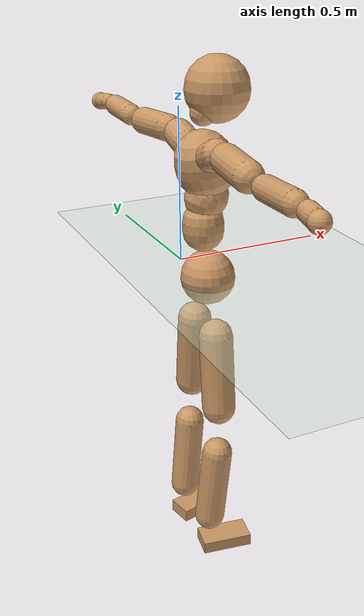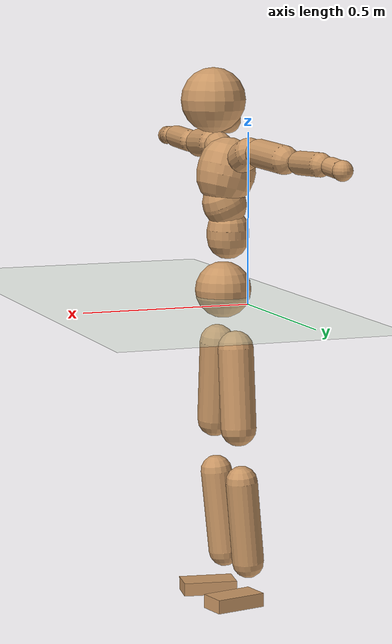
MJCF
<mujoco model="humanoid">
  <compiler coordinate="local" angle="radian"/>
  <default>
    <joint damping="0.0" armature="0.01" stiffness="0.0" limited="true"/>
    <geom conaffinity="1" condim="3" contype="7" margin="0.001" rgba="0.8 0.6 .4 1"/>
  </default>
  <asset>
    <texture type="skybox" builtin="gradient" rgb1=".4 .5 .6" rgb2="0 0 0" width="100" height="100"/>
    <texture builtin="flat" height="1278" mark="cross" markrgb="1 1 1" name="texgeom" random="0.01" rgb1="0.8 0.6 0.4" rgb2="0.8 0.6 0.4" type="cube" width="127"/>
    <texture builtin="checker" height="100" name="texplane" rgb1="0 0 0" rgb2="0.8 0.8 0.8" type="2d" width="100"/>
    <material name="MatPlane" reflectance="0.5" shininess="1" specular="1" texrepeat="60 60" texture="texplane"/>
    <material name="geom" texture="texgeom" texuniform="true"/>
  </asset>
  <worldbody>
    <light cutoff="100" diffuse="1 1 1" dir="-0 0 -1.3" directional="true" exponent="1" pos="0 0 1.3" specular=".1 .1 .1"/>
    <geom conaffinity="1" condim="3" name="floor" pos="0 0 0" rgba="0.8 0.9 0.8 1" size="100 100 .2" type="plane" material="MatPlane"/>
    <body name="Pelvis" pos="-0.0015 -0.2032 0.017">
      <freejoint name="Pelvis"/>
      <geom type="sphere" contype="1" conaffinity="1" density="500" size="0.0844" pos="0.0000 0.0000 0.0000" name="Pelvis"/>
      <body name="L_Hip" pos="-0.0121 0.0647 -0.0895">
        <joint name="L_Hip_x" type="hinge" pos="0 0 0" axis="1 0 0" stiffness="800" damping="80" armature="0.02" range="-180.0000 180.0000"/>
        <joint name="L_Hip_y" type="hinge" pos="0 0 0" axis="0 1 0" stiffness="800" damping="80" armature="0.02" range="-180.0000 180.0000"/>
        <joint name="L_Hip_z" type="hinge" pos="0 0 0" axis="0 0 1" stiffness="800" damping="80" armature="0.02" range="-180.0000 180.0000"/>
        <geom type="capsule" contype="1" conaffinity="1" density="500" fromto="-0.0002 0.0077 -0.0794 -0.0010 0.0310 -0.3175" size="0.0538" name="L_Hip"/>
        <body name="L_Knee" pos="-0.0012 0.0387 -0.3969">
          <joint name="L_Knee_x" type="hinge" pos="0 0 0" axis="1 0 0" stiffness="800" damping="80" armature="0.02" range="-180.0000 180.0000"/>
          <joint name="L_Knee_y" type="hinge" pos="0 0 0" axis="0 1 0" stiffness="800" damping="80" armature="0.02" range="-180.0000 180.0000"/>
          <joint name="L_Knee_z" type="hinge" pos="0 0 0" axis="0 0 1" stiffness="800" damping="80" armature="0.02" range="-180.0000 180.0000"/>
          <geom type="capsule" contype="1" conaffinity="1" density="500" fromto="-0.0082 -0.0024 -0.0836 -0.0327 -0.0096 -0.3342" size="0.0481" name="L_Knee"/>
          <body name="L_Ankle" pos="-0.0408 -0.012 -0.4178">
            <joint name="L_Ankle_x" type="hinge" pos="0 0 0" axis="1 0 0" stiffness="800" damping="80" armature="0.02" range="-180.0000 180.0000"/>
            <joint name="L_Ankle_y" type="hinge" pos="0 0 0" axis="0 1 0" stiffness="800" damping="80" armature="0.02" range="-180.0000 180.0000"/>
            <joint name="L_Ankle_z" type="hinge" pos="0 0 0" axis="0 0 1" stiffness="800" damping="80" armature="0.02" range="-180.0000 180.0000"/>
            <geom type="box" contype="1" conaffinity="1" density="500" pos="0.0574 0.0116 -0.0291" size="0.079 0.0422 0.021" quat="0.9950 0.0000 0.0000 0.0998" name="L_Ankle"/>
            <body name="L_Toe" pos="0.1149 0.0233 -0.0582">
              <joint name="L_Toe_x" type="hinge" pos="0 0 0" axis="1 0 0" stiffness="500" damping="50" armature="0.02" range="-180.0000 180.0000"/>
              <joint name="L_Toe_y" type="hinge" pos="0 0 0" axis="0 1 0" stiffness="500" damping="50" armature="0.02" range="-180.0000 180.0000"/>
              <joint name="L_Toe_z" type="hinge" pos="0 0 0" axis="0 0 1" stiffness="500" damping="50" armature="0.02" range="-180.0000 180.0000"/>
              <geom type="box" contype="1" conaffinity="1" density="500" pos="0.0000 0.0000 0.0291" size="0.0009 0.0021 0.001" quat="0.9943 0.0000 0.0000 0.1063" name="L_Toe"/>
            </body>
          </body>
        </body>
      </body>
      <body name="R_Hip" pos="-0.0075 -0.0626 -0.0886">
        <joint name="R_Hip_x" type="hinge" pos="0 0 0" axis="1 0 0" stiffness="800" damping="80" armature="0.02" range="-180.0000 180.0000"/>
        <joint name="R_Hip_y" type="hinge" pos="0 0 0" axis="0 1 0" stiffness="800" damping="80" armature="0.02" range="-180.0000 180.0000"/>
        <joint name="R_Hip_z" type="hinge" pos="0 0 0" axis="0 0 1" stiffness="800" damping="80" armature="0.02" range="-180.0000 180.0000"/>
        <geom type="capsule" contype="1" conaffinity="1" density="500" fromto="-0.0007 -0.0089 -0.0811 -0.0029 -0.0358 -0.3245" size="0.053" name="R_Hip"/>
        <body name="R_Knee" pos="-0.0036 -0.0447 -0.4056">
          <joint name="R_Knee_x" type="hinge" pos="0 0 0" axis="1 0 0" stiffness="800" damping="80" armature="0.02" range="-180.0000 180.0000"/>
          <joint name="R_Knee_y" type="hinge" pos="0 0 0" axis="0 1 0" stiffness="800" damping="80" armature="0.02" range="-180.0000 180.0000"/>
          <joint name="R_Knee_z" type="hinge" pos="0 0 0" axis="0 0 1" stiffness="800" damping="80" armature="0.02" range="-180.0000 180.0000"/>
          <geom type="capsule" contype="1" conaffinity="1" density="500" fromto="-0.0076 0.0032 -0.0838 -0.0303 0.0129 -0.3350" size="0.0486" name="R_Knee"/>
          <body name="R_Ankle" pos="-0.0379 0.0162 -0.4188">
            <joint name="R_Ankle_x" type="hinge" pos="0 0 0" axis="1 0 0" stiffness="800" damping="80" armature="0.02" range="-180.0000 180.0000"/>
            <joint name="R_Ankle_y" type="hinge" pos="0 0 0" axis="0 1 0" stiffness="800" damping="80" armature="0.02" range="-180.0000 180.0000"/>
            <joint name="R_Ankle_z" type="hinge" pos="0 0 0" axis="0 0 1" stiffness="800" damping="80" armature="0.02" range="-180.0000 180.0000"/>
            <geom type="box" contype="1" conaffinity="1" density="500" pos="0.0590 -0.0096 -0.0247" size="0.082 0.0445 0.0199" quat="0.9967 0.0000 0.0000 -0.0807" name="R_Ankle"/>
            <body name="R_Toe" pos="0.118 -0.0192 -0.0494">
              <joint name="R_Toe_x" type="hinge" pos="0 0 0" axis="1 0 0" stiffness="500" damping="50" armature="0.02" range="-180.0000 180.0000"/>
              <joint name="R_Toe_y" type="hinge" pos="0 0 0" axis="0 1 0" stiffness="500" damping="50" armature="0.02" range="-180.0000 180.0000"/>
              <joint name="R_Toe_z" type="hinge" pos="0 0 0" axis="0 0 1" stiffness="500" damping="50" armature="0.02" range="-180.0000 180.0000"/>
              <geom type="box" contype="1" conaffinity="1" density="500" pos="0.0000 0.0000 0.0270" size="0.0008 0.0022 0.0011" quat="0.9975 0.0000 0.0000 -0.0712" name="R_Toe"/>
            </body>
          </body>
        </body>
      </body>
      <body name="Torso" pos="-0.0158 -0.0025 0.1019">
        <joint name="Torso_x" type="hinge" pos="0 0 0" axis="1 0 0" stiffness="1000" damping="100" armature="0.02" range="-180.0000 180.0000"/>
        <joint name="Torso_y" type="hinge" pos="0 0 0" axis="0 1 0" stiffness="1000" damping="100" armature="0.02" range="-180.0000 180.0000"/>
        <joint name="Torso_z" type="hinge" pos="0 0 0" axis="0 0 1" stiffness="1000" damping="100" armature="0.02" range="-180.0000 180.0000"/>
        <geom type="capsule" contype="1" conaffinity="1" density="500" fromto="0.0010 0.0026 0.0784 0.0007 0.0017 0.0523" size="0.063" name="Torso"/>
        <body name="Spine" pos="0.0017 0.0043 0.1307">
          <joint name="Spine_x" type="hinge" pos="0 0 0" axis="1 0 0" stiffness="1000" damping="100" armature="0.02" range="-180.0000 180.0000"/>
          <joint name="Spine_y" type="hinge" pos="0 0 0" axis="0 1 0" stiffness="1000" damping="100" armature="0.02" range="-180.0000 180.0000"/>
          <joint name="Spine_z" type="hinge" pos="0 0 0" axis="0 0 1" stiffness="1000" damping="100" armature="0.02" range="-180.0000 180.0000"/>
          <geom type="capsule" contype="1" conaffinity="1" density="500" fromto="0.0139 0.0009 0.0301 0.0092 0.0006 0.0201" size="0.0652" name="Spine"/>
          <body name="Chest" pos="0.0231 0.0014 0.0502">
            <joint name="Chest_x" type="hinge" pos="0 0 0" axis="1 0 0" stiffness="1000" damping="100" armature="0.02" range="-180.0000 180.0000"/>
            <joint name="Chest_y" type="hinge" pos="0 0 0" axis="0 1 0" stiffness="1000" damping="100" armature="0.02" range="-180.0000 180.0000"/>
            <joint name="Chest_z" type="hinge" pos="0 0 0" axis="0 0 1" stiffness="1000" damping="100" armature="0.02" range="-180.0000 180.0000"/>
            <geom type="capsule" contype="1" conaffinity="1" density="500" fromto="-0.0213 -0.0017 0.0855 -0.0142 -0.0011 0.0570" size="0.0873" name="Chest"/>
            <body name="Neck" pos="-0.0347 -0.0053 0.2064">
              <joint name="Neck_x" type="hinge" pos="0 0 0" axis="1 0 0" stiffness="500" damping="50" armature="0.02" range="-180.0000 180.0000"/>
              <joint name="Neck_y" type="hinge" pos="0 0 0" axis="0 1 0" stiffness="500" damping="50" armature="0.02" range="-180.0000 180.0000"/>
              <joint name="Neck_z" type="hinge" pos="0 0 0" axis="0 0 1" stiffness="500" damping="50" armature="0.02" range="-180.0000 180.0000"/>
              <geom type="capsule" contype="1" conaffinity="1" density="500" fromto="0.0118 0.0012 0.0153 0.0472 0.0049 0.0611" size="0.0389" name="Neck"/>
              <body name="Head" pos="0.0591 0.0061 0.0763">
                <joint name="Head_x" type="hinge" pos="0 0 0" axis="1 0 0" stiffness="500" damping="50" armature="0.02" range="-180.0000 180.0000"/>
                <joint name="Head_y" type="hinge" pos="0 0 0" axis="0 1 0" stiffness="500" damping="50" armature="0.02" range="-180.0000 180.0000"/>
                <joint name="Head_z" type="hinge" pos="0 0 0" axis="0 0 1" stiffness="500" damping="50" armature="0.02" range="-180.0000 180.0000"/>
                <geom type="sphere" contype="1" conaffinity="1" density="500" size="0.0960" pos="0.0000 0.0000 0.0000" name="Head"/>
              </body>
            </body>
            <body name="L_Thorax" pos="-0.0338 0.0693 0.1114">
              <joint name="L_Thorax_x" type="hinge" pos="0 0 0" axis="1 0 0" stiffness="500" damping="50" armature="0.02" range="-180.0000 180.0000"/>
              <joint name="L_Thorax_y" type="hinge" pos="0 0 0" axis="0 1 0" stiffness="500" damping="50" armature="0.02" range="-180.0000 180.0000"/>
              <joint name="L_Thorax_z" type="hinge" pos="0 0 0" axis="0 0 1" stiffness="500" damping="50" armature="0.02" range="-180.0000 180.0000"/>
              <geom type="capsule" contype="1" conaffinity="1" density="500" fromto="-0.0012 0.0152 0.0059 -0.0046 0.0608 0.0235" size="0.0448" name="L_Thorax"/>
              <body name="L_Shoulder" pos="-0.0058 0.076 0.0294">
                <joint name="L_Shoulder_x" type="hinge" pos="0 0 0" axis="1 0 0" stiffness="500" damping="50" armature="0.02" range="-720.0000 720.0000"/>
                <joint name="L_Shoulder_y" type="hinge" pos="0 0 0" axis="0 1 0" stiffness="500" damping="50" armature="0.02" range="-720.0000 720.0000"/>
                <joint name="L_Shoulder_z" type="hinge" pos="0 0 0" axis="0 0 1" stiffness="500" damping="50" armature="0.02" range="-720.0000 720.0000"/>
                <geom type="capsule" contype="1" conaffinity="1" density="500" fromto="-0.0049 0.0509 -0.0027 -0.0197 0.2036 -0.0108" size="0.042" name="L_Shoulder"/>
                <body name="L_Elbow" pos="-0.0247 0.2545 -0.0134">
                  <joint name="L_Elbow_x" type="hinge" pos="0 0 0" axis="1 0 0" stiffness="500" damping="50" armature="0.02" range="-720.0000 720.0000"/>
                  <joint name="L_Elbow_y" type="hinge" pos="0 0 0" axis="0 1 0" stiffness="500" damping="50" armature="0.02" range="-720.0000 720.0000"/>
                  <joint name="L_Elbow_z" type="hinge" pos="0 0 0" axis="0 0 1" stiffness="500" damping="50" armature="0.02" range="-720.0000 720.0000"/>
                  <geom type="capsule" contype="1" conaffinity="1" density="500" fromto="-0.0007 0.0468 0.0019 -0.0028 0.1872 0.0077" size="0.034" name="L_Elbow"/>
                  <body name="L_Wrist" pos="-0.0035 0.234 0.0096">
                    <joint name="L_Wrist_x" type="hinge" pos="0 0 0" axis="1 0 0" stiffness="300" damping="30" armature="0.02" range="-180.0000 180.0000"/>
                    <joint name="L_Wrist_y" type="hinge" pos="0 0 0" axis="0 1 0" stiffness="300" damping="30" armature="0.02" range="-180.0000 180.0000"/>
                    <joint name="L_Wrist_z" type="hinge" pos="0 0 0" axis="0 0 1" stiffness="300" damping="30" armature="0.02" range="-180.0000 180.0000"/>
                    <geom type="capsule" contype="1" conaffinity="1" density="500" fromto="-0.0024 0.0143 -0.0018 -0.0098 0.0574 -0.0071" size="0.0268" name="L_Wrist"/>
                    <body name="L_Hand" pos="-0.0122 0.0717 -0.0089">
                      <joint name="L_Hand_x" type="hinge" pos="0 0 0" axis="1 0 0" stiffness="300" damping="30" armature="0.02" range="-180.0000 180.0000"/>
                      <joint name="L_Hand_y" type="hinge" pos="0 0 0" axis="0 1 0" stiffness="300" damping="30" armature="0.02" range="-180.0000 180.0000"/>
                      <joint name="L_Hand_z" type="hinge" pos="0 0 0" axis="0 0 1" stiffness="300" damping="30" armature="0.02" range="-180.0000 180.0000"/>
                      <geom type="sphere" contype="1" conaffinity="1" density="500" size="0.0289" pos="0.0000 0.0000 0.0000" name="L_Hand"/>
                    </body>
                  </body>
                </body>
              </body>
            </body>
            <body name="R_Thorax" pos="-0.038 -0.0723 0.1099">
              <joint name="R_Thorax_x" type="hinge" pos="0 0 0" axis="1 0 0" stiffness="500" damping="50" armature="0.02" range="-180.0000 180.0000"/>
              <joint name="R_Thorax_y" type="hinge" pos="0 0 0" axis="0 1 0" stiffness="500" damping="50" armature="0.02" range="-180.0000 180.0000"/>
              <joint name="R_Thorax_z" type="hinge" pos="0 0 0" axis="0 0 1" stiffness="500" damping="50" armature="0.02" range="-180.0000 180.0000"/>
              <geom type="capsule" contype="1" conaffinity="1" density="500" fromto="-0.0015 -0.0156 0.0064 -0.0061 -0.0622 0.0254" size="0.0437" name="R_Thorax"/>
              <body name="R_Shoulder" pos="-0.0076 -0.0778 0.0318">
                <joint name="R_Shoulder_x" type="hinge" pos="0 0 0" axis="1 0 0" stiffness="500" damping="50" armature="0.02" range="-720.0000 720.0000"/>
                <joint name="R_Shoulder_y" type="hinge" pos="0 0 0" axis="0 1 0" stiffness="500" damping="50" armature="0.02" range="-720.0000 720.0000"/>
                <joint name="R_Shoulder_z" type="hinge" pos="0 0 0" axis="0 0 1" stiffness="500" damping="50" armature="0.02" range="-720.0000 720.0000"/>
                <geom type="capsule" contype="1" conaffinity="1" density="500" fromto="-0.0039 -0.0485 -0.0028 -0.0154 -0.1941 -0.0113" size="0.0438" name="R_Shoulder"/>
                <body name="R_Elbow" pos="-0.0193 -0.2426 -0.0141">
                  <joint name="R_Elbow_x" type="hinge" pos="0 0 0" axis="1 0 0" stiffness="500" damping="50" armature="0.02" range="-720.0000 720.0000"/>
                  <joint name="R_Elbow_y" type="hinge" pos="0 0 0" axis="0 1 0" stiffness="500" damping="50" armature="0.02" range="-720.0000 720.0000"/>
                  <joint name="R_Elbow_z" type="hinge" pos="0 0 0" axis="0 0 1" stiffness="500" damping="50" armature="0.02" range="-720.0000 720.0000"/>
                  <geom type="capsule" contype="1" conaffinity="1" density="500" fromto="-0.0016 -0.0486 0.0016 -0.0065 -0.1945 0.0062" size="0.0346" name="R_Elbow"/>
                  <body name="R_Wrist" pos="-0.0082 -0.2431 0.0078">
                    <joint name="R_Wrist_x" type="hinge" pos="0 0 0" axis="1 0 0" stiffness="300" damping="30" armature="0.02" range="-180.0000 180.0000"/>
                    <joint name="R_Wrist_y" type="hinge" pos="0 0 0" axis="0 1 0" stiffness="300" damping="30" armature="0.02" range="-180.0000 180.0000"/>
                    <joint name="R_Wrist_z" type="hinge" pos="0 0 0" axis="0 0 1" stiffness="300" damping="30" armature="0.02" range="-180.0000 180.0000"/>
                    <geom type="capsule" contype="1" conaffinity="1" density="500" fromto="-0.0018 -0.0144 -0.0013 -0.0072 -0.0576 -0.0052" size="0.0276" name="R_Wrist"/>
                    <body name="R_Hand" pos="-0.0091 -0.072 -0.0065">
                      <joint name="R_Hand_x" type="hinge" pos="0 0 0" axis="1 0 0" stiffness="300" damping="30" armature="0.02" range="-180.0000 180.0000"/>
                      <joint name="R_Hand_y" type="hinge" pos="0 0 0" axis="0 1 0" stiffness="300" damping="30" armature="0.02" range="-180.0000 180.0000"/>
                      <joint name="R_Hand_z" type="hinge" pos="0 0 0" axis="0 0 1" stiffness="300" damping="30" armature="0.02" range="-180.0000 180.0000"/>
                      <geom type="sphere" contype="1" conaffinity="1" density="500" size="0.0290" pos="0.0000 0.0000 0.0000" name="R_Hand"/>
                    </body>
                  </body>
                </body>
              </body>
            </body>
          </body>
        </body>
      </body>
    </body>
  </worldbody>
  <actuator>
    <motor name="L_Hip_x" joint="L_Hip_x" gear="500"/>
    <motor name="L_Hip_y" joint="L_Hip_y" gear="500"/>
    <motor name="L_Hip_z" joint="L_Hip_z" gear="500"/>
    <motor name="L_Knee_x" joint="L_Knee_x" gear="500"/>
    <motor name="L_Knee_y" joint="L_Knee_y" gear="500"/>
    <motor name="L_Knee_z" joint="L_Knee_z" gear="500"/>
    <motor name="L_Ankle_x" joint="L_Ankle_x" gear="500"/>
    <motor name="L_Ankle_y" joint="L_Ankle_y" gear="500"/>
    <motor name="L_Ankle_z" joint="L_Ankle_z" gear="500"/>
    <motor name="L_Toe_x" joint="L_Toe_x" gear="500"/>
    <motor name="L_Toe_y" joint="L_Toe_y" gear="500"/>
    <motor name="L_Toe_z" joint="L_Toe_z" gear="500"/>
    <motor name="R_Hip_x" joint="R_Hip_x" gear="500"/>
    <motor name="R_Hip_y" joint="R_Hip_y" gear="500"/>
    <motor name="R_Hip_z" joint="R_Hip_z" gear="500"/>
    <motor name="R_Knee_x" joint="R_Knee_x" gear="500"/>
    <motor name="R_Knee_y" joint="R_Knee_y" gear="500"/>
    <motor name="R_Knee_z" joint="R_Knee_z" gear="500"/>
    <motor name="R_Ankle_x" joint="R_Ankle_x" gear="500"/>
    <motor name="R_Ankle_y" joint="R_Ankle_y" gear="500"/>
    <motor name="R_Ankle_z" joint="R_Ankle_z" gear="500"/>
    <motor name="R_Toe_x" joint="R_Toe_x" gear="500"/>
    <motor name="R_Toe_y" joint="R_Toe_y" gear="500"/>
    <motor name="R_Toe_z" joint="R_Toe_z" gear="500"/>
    <motor name="Torso_x" joint="Torso_x" gear="500"/>
    <motor name="Torso_y" joint="Torso_y" gear="500"/>
    <motor name="Torso_z" joint="Torso_z" gear="500"/>
    <motor name="Spine_x" joint="Spine_x" gear="500"/>
    <motor name="Spine_y" joint="Spine_y" gear="500"/>
    <motor name="Spine_z" joint="Spine_z" gear="500"/>
    <motor name="Chest_x" joint="Chest_x" gear="500"/>
    <motor name="Chest_y" joint="Chest_y" gear="500"/>
    <motor name="Chest_z" joint="Chest_z" gear="500"/>
    <motor name="Neck_x" joint="Neck_x" gear="500"/>
    <motor name="Neck_y" joint="Neck_y" gear="500"/>
    <motor name="Neck_z" joint="Neck_z" gear="500"/>
    <motor name="Head_x" joint="Head_x" gear="500"/>
    <motor name="Head_y" joint="Head_y" gear="500"/>
    <motor name="Head_z" joint="Head_z" gear="500"/>
    <motor name="L_Thorax_x" joint="L_Thorax_x" gear="500"/>
    <motor name="L_Thorax_y" joint="L_Thorax_y" gear="500"/>
    <motor name="L_Thorax_z" joint="L_Thorax_z" gear="500"/>
    <motor name="L_Shoulder_x" joint="L_Shoulder_x" gear="500"/>
    <motor name="L_Shoulder_y" joint="L_Shoulder_y" gear="500"/>
    <motor name="L_Shoulder_z" joint="L_Shoulder_z" gear="500"/>
    <motor name="L_Elbow_x" joint="L_Elbow_x" gear="500"/>
    <motor name="L_Elbow_y" joint="L_Elbow_y" gear="500"/>
    <motor name="L_Elbow_z" joint="L_Elbow_z" gear="500"/>
    <motor name="L_Wrist_x" joint="L_Wrist_x" gear="500"/>
    <motor name="L_Wrist_y" joint="L_Wrist_y" gear="500"/>
    <motor name="L_Wrist_z" joint="L_Wrist_z" gear="500"/>
    <motor name="L_Hand_x" joint="L_Hand_x" gear="500"/>
    <motor name="L_Hand_y" joint="L_Hand_y" gear="500"/>
    <motor name="L_Hand_z" joint="L_Hand_z" gear="500"/>
    <motor name="R_Thorax_x" joint="R_Thorax_x" gear="500"/>
    <motor name="R_Thorax_y" joint="R_Thorax_y" gear="500"/>
    <motor name="R_Thorax_z" joint="R_Thorax_z" gear="500"/>
    <motor name="R_Shoulder_x" joint="R_Shoulder_x" gear="500"/>
    <motor name="R_Shoulder_y" joint="R_Shoulder_y" gear="500"/>
    <motor name="R_Shoulder_z" joint="R_Shoulder_z" gear="500"/>
    <motor name="R_Elbow_x" joint="R_Elbow_x" gear="500"/>
    <motor name="R_Elbow_y" joint="R_Elbow_y" gear="500"/>
    <motor name="R_Elbow_z" joint="R_Elbow_z" gear="500"/>
    <motor name="R_Wrist_x" joint="R_Wrist_x" gear="500"/>
    <motor name="R_Wrist_y" joint="R_Wrist_y" gear="500"/>
    <motor name="R_Wrist_z" joint="R_Wrist_z" gear="500"/>
    <motor name="R_Hand_x" joint="R_Hand_x" gear="500"/>
    <motor name="R_Hand_y" joint="R_Hand_y" gear="500"/>
    <motor name="R_Hand_z" joint="R_Hand_z" gear="500"/>
  </actuator>
  <contact>
    <exclude body1="Torso" body2="Chest"/>
    <exclude body1="Head" body2="Chest"/>
    <exclude body1="R_Knee" body2="R_Toe"/>
    <exclude body1="R_Knee" body2="L_Ankle"/>
    <exclude body1="R_Knee" body2="L_Toe"/>
    <exclude body1="L_Knee" body2="L_Toe"/>
    <exclude body1="L_Knee" body2="R_Ankle"/>
    <exclude body1="L_Knee" body2="R_Toe"/>
    <exclude body1="L_Shoulder" body2="Chest"/>
    <exclude body1="R_Shoulder" body2="Chest"/>
  </contact>
  <sensor/>
  <size njmax="700" nconmax="700"/>
</mujoco>
